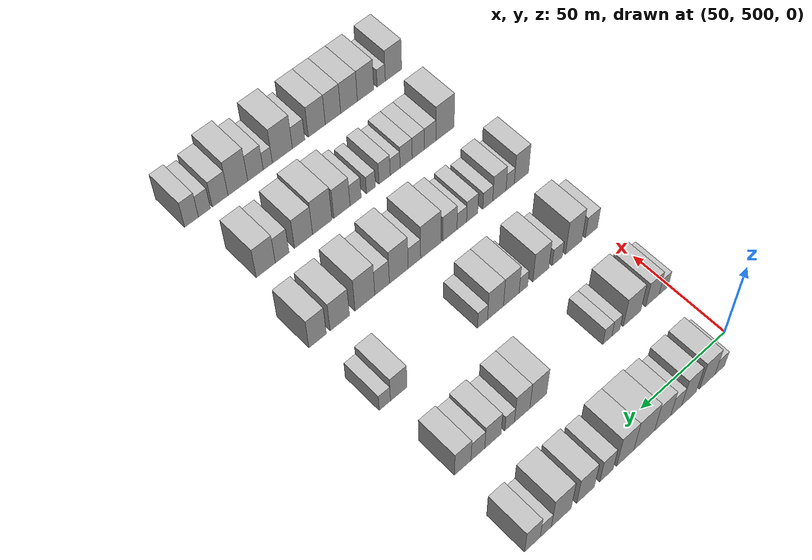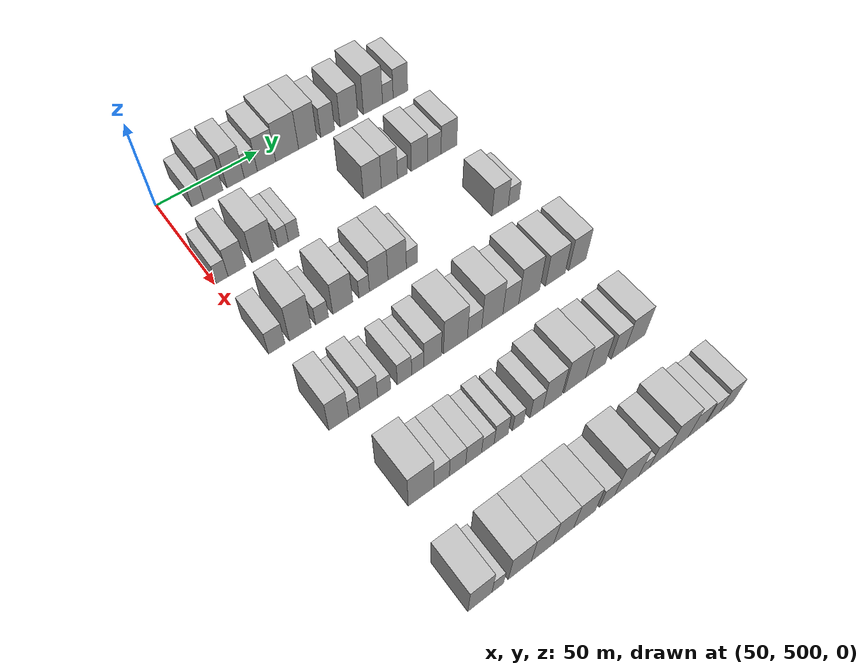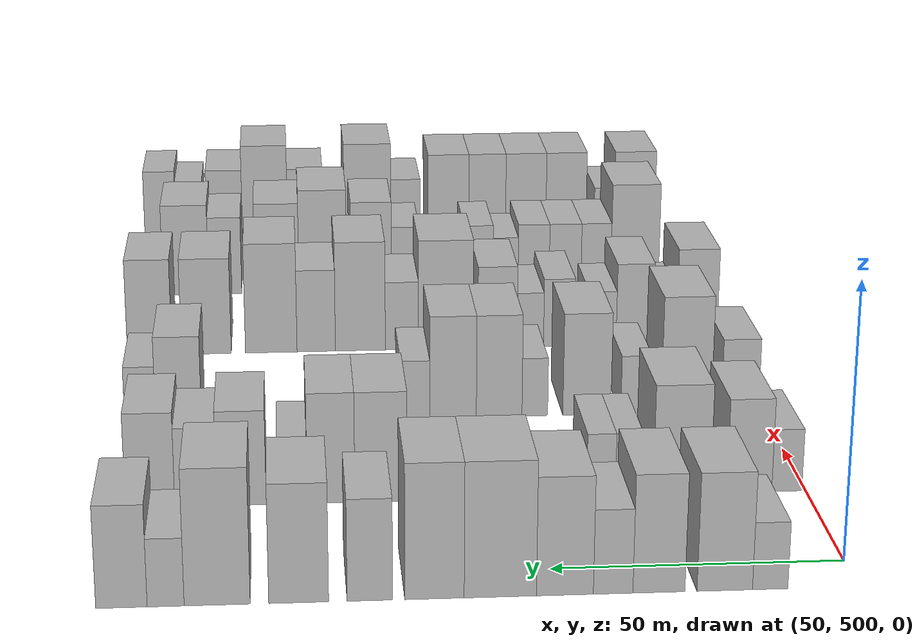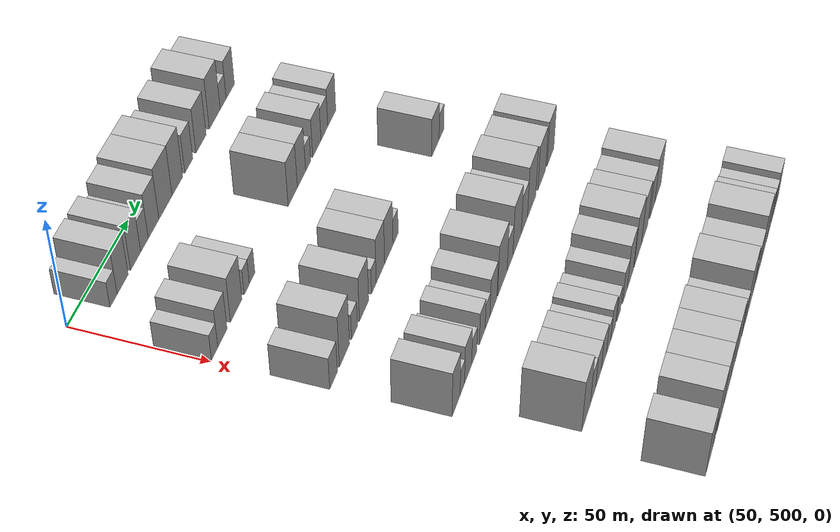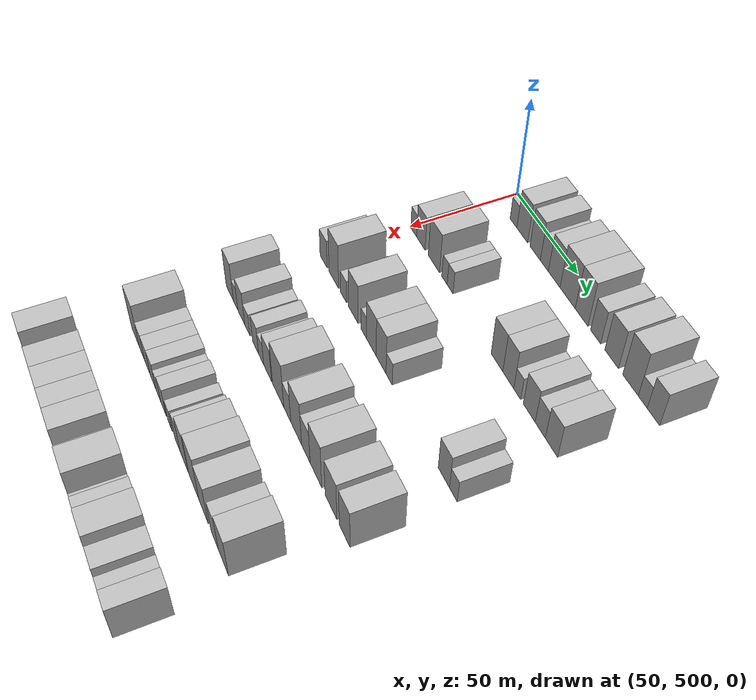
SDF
<sdf version="1.6">
 <world name="default">
  <model name="building_120">
   <static>1</static>
   <pose>50.0000 514.7602 0 0.000000 0.000000 0.000000</pose>
   <link name="link">
    <pose>0 0 6.00 0 0 0</pose>
    <collision name="collision"><geometry><box><size>20.0000 5.8984 12.0000</size></box></geometry></collision>
    <visual name="visual">
     <cast_shadows>0</cast_shadows>
     <geometry><box><size>20.0000 5.8984 12.0000</size></box></geometry>
     <material>
      <script>
       <uri>model://HANNAS_wall/materials/scripts</uri>
       <uri>model://HANNAS_wall/materials/textures</uri>
       <name>vrc/HANNAS_wall</name>
      </script>
     </material>
    </visual>
   </link>
  </model>
  <model name="building_121">
   <static>1</static>
   <pose>50.0000 522.3160 0 0.000000 0.000000 0.000000</pose>
   <link name="link">
    <pose>0 0 10.50 0 0 0</pose>
    <collision name="collision"><geometry><box><size>20.0000 9.2133 21.0000</size></box></geometry></collision>
    <visual name="visual">
     <cast_shadows>0</cast_shadows>
     <geometry><box><size>20.0000 9.2133 21.0000</size></box></geometry>
     <material>
      <script>
       <uri>model://HANNAS_wall/materials/scripts</uri>
       <uri>model://HANNAS_wall/materials/textures</uri>
       <name>vrc/HANNAS_wall</name>
      </script>
     </material>
    </visual>
   </link>
  </model>
  <model name="building_122">
   <static>1</static>
   <pose>50.0000 533.2358 0 0.000000 0.000000 0.000000</pose>
   <link name="link">
    <pose>0 0 10.50 0 0 0</pose>
    <collision name="collision"><geometry><box><size>20.0000 8.6262 21.0000</size></box></geometry></collision>
    <visual name="visual">
     <cast_shadows>0</cast_shadows>
     <geometry><box><size>20.0000 8.6262 21.0000</size></box></geometry>
     <material>
      <script>
       <uri>model://HANNAS_wall/materials/scripts</uri>
       <uri>model://HANNAS_wall/materials/textures</uri>
       <name>vrc/HANNAS_wall</name>
      </script>
     </material>
    </visual>
   </link>
  </model>
  <model name="building_123">
   <static>1</static>
   <pose>50.0000 540.8161 0 0.000000 0.000000 0.000000</pose>
   <link name="link">
    <pose>0 0 7.50 0 0 0</pose>
    <collision name="collision"><geometry><box><size>20.0000 6.5344 15.0000</size></box></geometry></collision>
    <visual name="visual">
     <cast_shadows>0</cast_shadows>
     <geometry><box><size>20.0000 6.5344 15.0000</size></box></geometry>
     <material>
      <script>
       <uri>model://HANNAS_wall/materials/scripts</uri>
       <uri>model://HANNAS_wall/materials/textures</uri>
       <name>vrc/HANNAS_wall</name>
      </script>
     </material>
    </visual>
   </link>
  </model>
  <model name="building_124">
   <static>1</static>
   <pose>50.0000 548.7721 0 0.000000 0.000000 0.000000</pose>
   <link name="link">
    <pose>0 0 10.50 0 0 0</pose>
    <collision name="collision"><geometry><box><size>20.0000 9.3776 21.0000</size></box></geometry></collision>
    <visual name="visual">
     <cast_shadows>0</cast_shadows>
     <geometry><box><size>20.0000 9.3776 21.0000</size></box></geometry>
     <material>
      <script>
       <uri>model://HANNAS_wall/materials/scripts</uri>
       <uri>model://HANNAS_wall/materials/textures</uri>
       <name>vrc/HANNAS_wall</name>
      </script>
     </material>
    </visual>
   </link>
  </model>
  <model name="building_125">
   <static>1</static>
   <pose>50.0000 559.3922 0 0.000000 0.000000 0.000000</pose>
   <link name="link">
    <pose>0 0 12.00 0 0 0</pose>
    <collision name="collision"><geometry><box><size>20.0000 11.8626 24.0000</size></box></geometry></collision>
    <visual name="visual">
     <cast_shadows>0</cast_shadows>
     <geometry><box><size>20.0000 11.8626 24.0000</size></box></geometry>
     <material>
      <script>
       <uri>model://HANNAS_wall/materials/scripts</uri>
       <uri>model://HANNAS_wall/materials/textures</uri>
       <name>vrc/HANNAS_wall</name>
      </script>
     </material>
    </visual>
   </link>
  </model>
  <model name="building_126">
   <static>1</static>
   <pose>50.0000 570.1721 0 0.000000 0.000000 0.000000</pose>
   <link name="link">
    <pose>0 0 12.00 0 0 0</pose>
    <collision name="collision"><geometry><box><size>20.0000 9.6972 24.0000</size></box></geometry></collision>
    <visual name="visual">
     <cast_shadows>0</cast_shadows>
     <geometry><box><size>20.0000 9.6972 24.0000</size></box></geometry>
     <material>
      <script>
       <uri>model://HANNAS_wall/materials/scripts</uri>
       <uri>model://HANNAS_wall/materials/textures</uri>
       <name>vrc/HANNAS_wall</name>
      </script>
     </material>
    </visual>
   </link>
  </model>
  <model name="building_127">
   <static>1</static>
   <pose>50.0000 580.7354 0 0.000000 0.000000 0.000000</pose>
   <link name="link">
    <pose>0 0 9.00 0 0 0</pose>
    <collision name="collision"><geometry><box><size>20.0000 7.4294 18.0000</size></box></geometry></collision>
    <visual name="visual">
     <cast_shadows>0</cast_shadows>
     <geometry><box><size>20.0000 7.4294 18.0000</size></box></geometry>
     <material>
      <script>
       <uri>model://HANNAS_wall/materials/scripts</uri>
       <uri>model://HANNAS_wall/materials/textures</uri>
       <name>vrc/HANNAS_wall</name>
      </script>
     </material>
    </visual>
   </link>
  </model>
  <model name="building_128">
   <static>1</static>
   <pose>50.0000 592.3159 0 0.000000 0.000000 0.000000</pose>
   <link name="link">
    <pose>0 0 10.50 0 0 0</pose>
    <collision name="collision"><geometry><box><size>20.0000 9.7315 21.0000</size></box></geometry></collision>
    <visual name="visual">
     <cast_shadows>0</cast_shadows>
     <geometry><box><size>20.0000 9.7315 21.0000</size></box></geometry>
     <material>
      <script>
       <uri>model://HANNAS_wall/materials/scripts</uri>
       <uri>model://HANNAS_wall/materials/textures</uri>
       <name>vrc/HANNAS_wall</name>
      </script>
     </material>
    </visual>
   </link>
  </model>
  <model name="building_129">
   <static>1</static>
   <pose>50.0000 605.5286 0 0.000000 0.000000 0.000000</pose>
   <link name="link">
    <pose>0 0 12.00 0 0 0</pose>
    <collision name="collision"><geometry><box><size>20.0000 10.6940 24.0000</size></box></geometry></collision>
    <visual name="visual">
     <cast_shadows>0</cast_shadows>
     <geometry><box><size>20.0000 10.6940 24.0000</size></box></geometry>
     <material>
      <script>
       <uri>model://HANNAS_wall/materials/scripts</uri>
       <uri>model://HANNAS_wall/materials/textures</uri>
       <name>vrc/HANNAS_wall</name>
      </script>
     </material>
    </visual>
   </link>
  </model>
  <model name="building_130">
   <static>1</static>
   <pose>50.0000 613.8594 0 0.000000 0.000000 0.000000</pose>
   <link name="link">
    <pose>0 0 6.00 0 0 0</pose>
    <collision name="collision"><geometry><box><size>20.0000 5.9675 12.0000</size></box></geometry></collision>
    <visual name="visual">
     <cast_shadows>0</cast_shadows>
     <geometry><box><size>20.0000 5.9675 12.0000</size></box></geometry>
     <material>
      <script>
       <uri>model://HANNAS_wall/materials/scripts</uri>
       <uri>model://HANNAS_wall/materials/textures</uri>
       <name>vrc/HANNAS_wall</name>
      </script>
     </material>
    </visual>
   </link>
  </model>
  <model name="building_131">
   <static>1</static>
   <pose>50.0000 620.9827 0 0.000000 0.000000 0.000000</pose>
   <link name="link">
    <pose>0 0 9.00 0 0 0</pose>
    <collision name="collision"><geometry><box><size>20.0000 8.2790 18.0000</size></box></geometry></collision>
    <visual name="visual">
     <cast_shadows>0</cast_shadows>
     <geometry><box><size>20.0000 8.2790 18.0000</size></box></geometry>
     <material>
      <script>
       <uri>model://HANNAS_wall/materials/scripts</uri>
       <uri>model://HANNAS_wall/materials/textures</uri>
       <name>vrc/HANNAS_wall</name>
      </script>
     </material>
    </visual>
   </link>
  </model>
  <model name="building_256">
   <static>1</static>
   <pose>90.0000 503.4639 0 0.000000 0.000000 0.000000</pose>
   <link name="link">
    <pose>0 0 6.00 0 0 0</pose>
    <collision name="collision"><geometry><box><size>20.0000 5.5301 12.0000</size></box></geometry></collision>
    <visual name="visual">
     <cast_shadows>0</cast_shadows>
     <geometry><box><size>20.0000 5.5301 12.0000</size></box></geometry>
     <material>
      <script>
       <uri>model://HANNAS_wall/materials/scripts</uri>
       <uri>model://HANNAS_wall/materials/textures</uri>
       <name>vrc/HANNAS_wall</name>
      </script>
     </material>
    </visual>
   </link>
  </model>
  <model name="building_257">
   <static>1</static>
   <pose>90.0000 510.3367 0 0.000000 0.000000 0.000000</pose>
   <link name="link">
    <pose>0 0 9.00 0 0 0</pose>
    <collision name="collision"><geometry><box><size>20.0000 8.2156 18.0000</size></box></geometry></collision>
    <visual name="visual">
     <cast_shadows>0</cast_shadows>
     <geometry><box><size>20.0000 8.2156 18.0000</size></box></geometry>
     <material>
      <script>
       <uri>model://HANNAS_wall/materials/scripts</uri>
       <uri>model://HANNAS_wall/materials/textures</uri>
       <name>vrc/HANNAS_wall</name>
      </script>
     </material>
    </visual>
   </link>
  </model>
  <model name="building_258">
   <static>1</static>
   <pose>90.0000 522.6820 0 0.000000 0.000000 0.000000</pose>
   <link name="link">
    <pose>0 0 10.50 0 0 0</pose>
    <collision name="collision"><geometry><box><size>20.0000 10.4751 21.0000</size></box></geometry></collision>
    <visual name="visual">
     <cast_shadows>0</cast_shadows>
     <geometry><box><size>20.0000 10.4751 21.0000</size></box></geometry>
     <material>
      <script>
       <uri>model://HANNAS_wall/materials/scripts</uri>
       <uri>model://HANNAS_wall/materials/textures</uri>
       <name>vrc/HANNAS_wall</name>
      </script>
     </material>
    </visual>
   </link>
  </model>
  <model name="building_259">
   <static>1</static>
   <pose>90.0000 532.3511 0 0.000000 0.000000 0.000000</pose>
   <link name="link">
    <pose>0 0 6.00 0 0 0</pose>
    <collision name="collision"><geometry><box><size>20.0000 4.8631 12.0000</size></box></geometry></collision>
    <visual name="visual">
     <cast_shadows>0</cast_shadows>
     <geometry><box><size>20.0000 4.8631 12.0000</size></box></geometry>
     <material>
      <script>
       <uri>model://HANNAS_wall/materials/scripts</uri>
       <uri>model://HANNAS_wall/materials/textures</uri>
       <name>vrc/HANNAS_wall</name>
      </script>
     </material>
    </visual>
   </link>
  </model>
  <model name="building_260">
   <static>1</static>
   <pose>90.0000 537.4042 0 0.000000 0.000000 0.000000</pose>
   <link name="link">
    <pose>0 0 6.00 0 0 0</pose>
    <collision name="collision"><geometry><box><size>20.0000 5.2430 12.0000</size></box></geometry></collision>
    <visual name="visual">
     <cast_shadows>0</cast_shadows>
     <geometry><box><size>20.0000 5.2430 12.0000</size></box></geometry>
     <material>
      <script>
       <uri>model://HANNAS_wall/materials/scripts</uri>
       <uri>model://HANNAS_wall/materials/textures</uri>
       <name>vrc/HANNAS_wall</name>
      </script>
     </material>
    </visual>
   </link>
  </model>
  <model name="building_261">
   <static>1</static>
   <pose>90.0000 577.1079 0 0.000000 0.000000 0.000000</pose>
   <link name="link">
    <pose>0 0 10.50 0 0 0</pose>
    <collision name="collision"><geometry><box><size>20.0000 9.3881 21.0000</size></box></geometry></collision>
    <visual name="visual">
     <cast_shadows>0</cast_shadows>
     <geometry><box><size>20.0000 9.3881 21.0000</size></box></geometry>
     <material>
      <script>
       <uri>model://HANNAS_wall/materials/scripts</uri>
       <uri>model://HANNAS_wall/materials/textures</uri>
       <name>vrc/HANNAS_wall</name>
      </script>
     </material>
    </visual>
   </link>
  </model>
  <model name="building_262">
   <static>1</static>
   <pose>90.0000 586.0596 0 0.000000 0.000000 0.000000</pose>
   <link name="link">
    <pose>0 0 10.50 0 0 0</pose>
    <collision name="collision"><geometry><box><size>20.0000 8.5152 21.0000</size></box></geometry></collision>
    <visual name="visual">
     <cast_shadows>0</cast_shadows>
     <geometry><box><size>20.0000 8.5152 21.0000</size></box></geometry>
     <material>
      <script>
       <uri>model://HANNAS_wall/materials/scripts</uri>
       <uri>model://HANNAS_wall/materials/textures</uri>
       <name>vrc/HANNAS_wall</name>
      </script>
     </material>
    </visual>
   </link>
  </model>
  <model name="building_263">
   <static>1</static>
   <pose>90.0000 592.9857 0 0.000000 0.000000 0.000000</pose>
   <link name="link">
    <pose>0 0 6.00 0 0 0</pose>
    <collision name="collision"><geometry><box><size>20.0000 5.3370 12.0000</size></box></geometry></collision>
    <visual name="visual">
     <cast_shadows>0</cast_shadows>
     <geometry><box><size>20.0000 5.3370 12.0000</size></box></geometry>
     <material>
      <script>
       <uri>model://HANNAS_wall/materials/scripts</uri>
       <uri>model://HANNAS_wall/materials/textures</uri>
       <name>vrc/HANNAS_wall</name>
      </script>
     </material>
    </visual>
   </link>
  </model>
  <model name="building_264">
   <static>1</static>
   <pose>90.0000 602.0982 0 0.000000 0.000000 0.000000</pose>
   <link name="link">
    <pose>0 0 9.00 0 0 0</pose>
    <collision name="collision"><geometry><box><size>20.0000 8.8879 18.0000</size></box></geometry></collision>
    <visual name="visual">
     <cast_shadows>0</cast_shadows>
     <geometry><box><size>20.0000 8.8879 18.0000</size></box></geometry>
     <material>
      <script>
       <uri>model://HANNAS_wall/materials/scripts</uri>
       <uri>model://HANNAS_wall/materials/textures</uri>
       <name>vrc/HANNAS_wall</name>
      </script>
     </material>
    </visual>
   </link>
  </model>
  <model name="building_265">
   <static>1</static>
   <pose>90.0000 610.2384 0 0.000000 0.000000 0.000000</pose>
   <link name="link">
    <pose>0 0 7.50 0 0 0</pose>
    <collision name="collision"><geometry><box><size>20.0000 7.3925 15.0000</size></box></geometry></collision>
    <visual name="visual">
     <cast_shadows>0</cast_shadows>
     <geometry><box><size>20.0000 7.3925 15.0000</size></box></geometry>
     <material>
      <script>
       <uri>model://HANNAS_wall/materials/scripts</uri>
       <uri>model://HANNAS_wall/materials/textures</uri>
       <name>vrc/HANNAS_wall</name>
      </script>
     </material>
    </visual>
   </link>
  </model>
  <model name="building_266">
   <static>1</static>
   <pose>90.0000 618.3263 0 0.000000 0.000000 0.000000</pose>
   <link name="link">
    <pose>0 0 9.00 0 0 0</pose>
    <collision name="collision"><geometry><box><size>20.0000 8.7832 18.0000</size></box></geometry></collision>
    <visual name="visual">
     <cast_shadows>0</cast_shadows>
     <geometry><box><size>20.0000 8.7832 18.0000</size></box></geometry>
     <material>
      <script>
       <uri>model://HANNAS_wall/materials/scripts</uri>
       <uri>model://HANNAS_wall/materials/textures</uri>
       <name>vrc/HANNAS_wall</name>
      </script>
     </material>
    </visual>
   </link>
  </model>
  <model name="building_387">
   <static>1</static>
   <pose>130.0000 504.3162 0 0.000000 0.000000 0.000000</pose>
   <link name="link">
    <pose>0 0 7.50 0 0 0</pose>
    <collision name="collision"><geometry><box><size>20.0000 7.4465 15.0000</size></box></geometry></collision>
    <visual name="visual">
     <cast_shadows>0</cast_shadows>
     <geometry><box><size>20.0000 7.4465 15.0000</size></box></geometry>
     <material>
      <script>
       <uri>model://HANNAS_wall/materials/scripts</uri>
       <uri>model://HANNAS_wall/materials/textures</uri>
       <name>vrc/HANNAS_wall</name>
      </script>
     </material>
    </visual>
   </link>
  </model>
  <model name="building_388">
   <static>1</static>
   <pose>130.0000 515.0368 0 0.000000 0.000000 0.000000</pose>
   <link name="link">
    <pose>0 0 12.00 0 0 0</pose>
    <collision name="collision"><geometry><box><size>20.0000 9.9949 24.0000</size></box></geometry></collision>
    <visual name="visual">
     <cast_shadows>0</cast_shadows>
     <geometry><box><size>20.0000 9.9949 24.0000</size></box></geometry>
     <material>
      <script>
       <uri>model://HANNAS_wall/materials/scripts</uri>
       <uri>model://HANNAS_wall/materials/textures</uri>
       <name>vrc/HANNAS_wall</name>
      </script>
     </material>
    </visual>
   </link>
  </model>
  <model name="building_389">
   <static>1</static>
   <pose>130.0000 525.0308 0 0.000000 0.000000 0.000000</pose>
   <link name="link">
    <pose>0 0 6.00 0 0 0</pose>
    <collision name="collision"><geometry><box><size>20.0000 5.9930 12.0000</size></box></geometry></collision>
    <visual name="visual">
     <cast_shadows>0</cast_shadows>
     <geometry><box><size>20.0000 5.9930 12.0000</size></box></geometry>
     <material>
      <script>
       <uri>model://HANNAS_wall/materials/scripts</uri>
       <uri>model://HANNAS_wall/materials/textures</uri>
       <name>vrc/HANNAS_wall</name>
      </script>
     </material>
    </visual>
   </link>
  </model>
  <model name="building_390">
   <static>1</static>
   <pose>130.0000 534.7766 0 0.000000 0.000000 0.000000</pose>
   <link name="link">
    <pose>0 0 10.50 0 0 0</pose>
    <collision name="collision"><geometry><box><size>20.0000 9.4985 21.0000</size></box></geometry></collision>
    <visual name="visual">
     <cast_shadows>0</cast_shadows>
     <geometry><box><size>20.0000 9.4985 21.0000</size></box></geometry>
     <material>
      <script>
       <uri>model://HANNAS_wall/materials/scripts</uri>
       <uri>model://HANNAS_wall/materials/textures</uri>
       <name>vrc/HANNAS_wall</name>
      </script>
     </material>
    </visual>
   </link>
  </model>
  <model name="building_391">
   <static>1</static>
   <pose>130.0000 545.0600 0 0.000000 0.000000 0.000000</pose>
   <link name="link">
    <pose>0 0 6.00 0 0 0</pose>
    <collision name="collision"><geometry><box><size>20.0000 5.0683 12.0000</size></box></geometry></collision>
    <visual name="visual">
     <cast_shadows>0</cast_shadows>
     <geometry><box><size>20.0000 5.0683 12.0000</size></box></geometry>
     <material>
      <script>
       <uri>model://HANNAS_wall/materials/scripts</uri>
       <uri>model://HANNAS_wall/materials/textures</uri>
       <name>vrc/HANNAS_wall</name>
      </script>
     </material>
    </visual>
   </link>
  </model>
  <model name="building_392">
   <static>1</static>
   <pose>130.0000 552.0949 0 0.000000 0.000000 0.000000</pose>
   <link name="link">
    <pose>0 0 10.50 0 0 0</pose>
    <collision name="collision"><geometry><box><size>20.0000 9.0016 21.0000</size></box></geometry></collision>
    <visual name="visual">
     <cast_shadows>0</cast_shadows>
     <geometry><box><size>20.0000 9.0016 21.0000</size></box></geometry>
     <material>
      <script>
       <uri>model://HANNAS_wall/materials/scripts</uri>
       <uri>model://HANNAS_wall/materials/textures</uri>
       <name>vrc/HANNAS_wall</name>
      </script>
     </material>
    </visual>
   </link>
  </model>
  <model name="building_393">
   <static>1</static>
   <pose>130.0000 561.1725 0 0.000000 0.000000 0.000000</pose>
   <link name="link">
    <pose>0 0 10.50 0 0 0</pose>
    <collision name="collision"><geometry><box><size>20.0000 9.1536 21.0000</size></box></geometry></collision>
    <visual name="visual">
     <cast_shadows>0</cast_shadows>
     <geometry><box><size>20.0000 9.1536 21.0000</size></box></geometry>
     <material>
      <script>
       <uri>model://HANNAS_wall/materials/scripts</uri>
       <uri>model://HANNAS_wall/materials/textures</uri>
       <name>vrc/HANNAS_wall</name>
      </script>
     </material>
    </visual>
   </link>
  </model>
  <model name="building_394">
   <static>1</static>
   <pose>130.0000 568.5915 0 0.000000 0.000000 0.000000</pose>
   <link name="link">
    <pose>0 0 6.00 0 0 0</pose>
    <collision name="collision"><geometry><box><size>20.0000 5.6844 12.0000</size></box></geometry></collision>
    <visual name="visual">
     <cast_shadows>0</cast_shadows>
     <geometry><box><size>20.0000 5.6844 12.0000</size></box></geometry>
     <material>
      <script>
       <uri>model://HANNAS_wall/materials/scripts</uri>
       <uri>model://HANNAS_wall/materials/textures</uri>
       <name>vrc/HANNAS_wall</name>
      </script>
     </material>
    </visual>
   </link>
  </model>
  <model name="building_395">
   <static>1</static>
   <pose>130.0000 614.7691 0 0.000000 0.000000 0.000000</pose>
   <link name="link">
    <pose>0 0 9.00 0 0 0</pose>
    <collision name="collision"><geometry><box><size>20.0000 8.8903 18.0000</size></box></geometry></collision>
    <visual name="visual">
     <cast_shadows>0</cast_shadows>
     <geometry><box><size>20.0000 8.8903 18.0000</size></box></geometry>
     <material>
      <script>
       <uri>model://HANNAS_wall/materials/scripts</uri>
       <uri>model://HANNAS_wall/materials/textures</uri>
       <name>vrc/HANNAS_wall</name>
      </script>
     </material>
    </visual>
   </link>
  </model>
  <model name="building_396">
   <static>1</static>
   <pose>130.0000 622.2013 0 0.000000 0.000000 0.000000</pose>
   <link name="link">
    <pose>0 0 6.00 0 0 0</pose>
    <collision name="collision"><geometry><box><size>20.0000 5.9740 12.0000</size></box></geometry></collision>
    <visual name="visual">
     <cast_shadows>0</cast_shadows>
     <geometry><box><size>20.0000 5.9740 12.0000</size></box></geometry>
     <material>
      <script>
       <uri>model://HANNAS_wall/materials/scripts</uri>
       <uri>model://HANNAS_wall/materials/textures</uri>
       <name>vrc/HANNAS_wall</name>
      </script>
     </material>
    </visual>
   </link>
  </model>
  <model name="building_527">
   <static>1</static>
   <pose>170.0000 505.9463 0 0.000000 0.000000 0.000000</pose>
   <link name="link">
    <pose>0 0 10.50 0 0 0</pose>
    <collision name="collision"><geometry><box><size>20.0000 8.7324 21.0000</size></box></geometry></collision>
    <visual name="visual">
     <cast_shadows>0</cast_shadows>
     <geometry><box><size>20.0000 8.7324 21.0000</size></box></geometry>
     <material>
      <script>
       <uri>model://HANNAS_wall/materials/scripts</uri>
       <uri>model://HANNAS_wall/materials/textures</uri>
       <name>vrc/HANNAS_wall</name>
      </script>
     </material>
    </visual>
   </link>
  </model>
  <model name="building_528">
   <static>1</static>
   <pose>170.0000 512.8039 0 0.000000 0.000000 0.000000</pose>
   <link name="link">
    <pose>0 0 6.00 0 0 0</pose>
    <collision name="collision"><geometry><box><size>20.0000 4.9829 12.0000</size></box></geometry></collision>
    <visual name="visual">
     <cast_shadows>0</cast_shadows>
     <geometry><box><size>20.0000 4.9829 12.0000</size></box></geometry>
     <material>
      <script>
       <uri>model://HANNAS_wall/materials/scripts</uri>
       <uri>model://HANNAS_wall/materials/textures</uri>
       <name>vrc/HANNAS_wall</name>
      </script>
     </material>
    </visual>
   </link>
  </model>
  <model name="building_529">
   <static>1</static>
   <pose>170.0000 519.2996 0 0.000000 0.000000 0.000000</pose>
   <link name="link">
    <pose>0 0 9.00 0 0 0</pose>
    <collision name="collision"><geometry><box><size>20.0000 8.0085 18.0000</size></box></geometry></collision>
    <visual name="visual">
     <cast_shadows>0</cast_shadows>
     <geometry><box><size>20.0000 8.0085 18.0000</size></box></geometry>
     <material>
      <script>
       <uri>model://HANNAS_wall/materials/scripts</uri>
       <uri>model://HANNAS_wall/materials/textures</uri>
       <name>vrc/HANNAS_wall</name>
      </script>
     </material>
    </visual>
   </link>
  </model>
  <model name="building_530">
   <static>1</static>
   <pose>170.0000 526.2612 0 0.000000 0.000000 0.000000</pose>
   <link name="link">
    <pose>0 0 6.00 0 0 0</pose>
    <collision name="collision"><geometry><box><size>20.0000 5.9145 12.0000</size></box></geometry></collision>
    <visual name="visual">
     <cast_shadows>0</cast_shadows>
     <geometry><box><size>20.0000 5.9145 12.0000</size></box></geometry>
     <material>
      <script>
       <uri>model://HANNAS_wall/materials/scripts</uri>
       <uri>model://HANNAS_wall/materials/textures</uri>
       <name>vrc/HANNAS_wall</name>
      </script>
     </material>
    </visual>
   </link>
  </model>
  <model name="building_531">
   <static>1</static>
   <pose>170.0000 535.5401 0 0.000000 0.000000 0.000000</pose>
   <link name="link">
    <pose>0 0 7.50 0 0 0</pose>
    <collision name="collision"><geometry><box><size>20.0000 6.6434 15.0000</size></box></geometry></collision>
    <visual name="visual">
     <cast_shadows>0</cast_shadows>
     <geometry><box><size>20.0000 6.6434 15.0000</size></box></geometry>
     <material>
      <script>
       <uri>model://HANNAS_wall/materials/scripts</uri>
       <uri>model://HANNAS_wall/materials/textures</uri>
       <name>vrc/HANNAS_wall</name>
      </script>
     </material>
    </visual>
   </link>
  </model>
  <model name="building_532">
   <static>1</static>
   <pose>170.0000 541.6931 0 0.000000 0.000000 0.000000</pose>
   <link name="link">
    <pose>0 0 6.00 0 0 0</pose>
    <collision name="collision"><geometry><box><size>20.0000 5.6625 12.0000</size></box></geometry></collision>
    <visual name="visual">
     <cast_shadows>0</cast_shadows>
     <geometry><box><size>20.0000 5.6625 12.0000</size></box></geometry>
     <material>
      <script>
       <uri>model://HANNAS_wall/materials/scripts</uri>
       <uri>model://HANNAS_wall/materials/textures</uri>
       <name>vrc/HANNAS_wall</name>
      </script>
     </material>
    </visual>
   </link>
  </model>
  <model name="building_533">
   <static>1</static>
   <pose>170.0000 548.7113 0 0.000000 0.000000 0.000000</pose>
   <link name="link">
    <pose>0 0 9.00 0 0 0</pose>
    <collision name="collision"><geometry><box><size>20.0000 8.3740 18.0000</size></box></geometry></collision>
    <visual name="visual">
     <cast_shadows>0</cast_shadows>
     <geometry><box><size>20.0000 8.3740 18.0000</size></box></geometry>
     <material>
      <script>
       <uri>model://HANNAS_wall/materials/scripts</uri>
       <uri>model://HANNAS_wall/materials/textures</uri>
       <name>vrc/HANNAS_wall</name>
      </script>
     </material>
    </visual>
   </link>
  </model>
  <model name="building_534">
   <static>1</static>
   <pose>170.0000 559.7133 0 0.000000 0.000000 0.000000</pose>
   <link name="link">
    <pose>0 0 12.00 0 0 0</pose>
    <collision name="collision"><geometry><box><size>20.0000 11.6300 24.0000</size></box></geometry></collision>
    <visual name="visual">
     <cast_shadows>0</cast_shadows>
     <geometry><box><size>20.0000 11.6300 24.0000</size></box></geometry>
     <material>
      <script>
       <uri>model://HANNAS_wall/materials/scripts</uri>
       <uri>model://HANNAS_wall/materials/textures</uri>
       <name>vrc/HANNAS_wall</name>
      </script>
     </material>
    </visual>
   </link>
  </model>
  <model name="building_535">
   <static>1</static>
   <pose>170.0000 569.0607 0 0.000000 0.000000 0.000000</pose>
   <link name="link">
    <pose>0 0 7.50 0 0 0</pose>
    <collision name="collision"><geometry><box><size>20.0000 7.0647 15.0000</size></box></geometry></collision>
    <visual name="visual">
     <cast_shadows>0</cast_shadows>
     <geometry><box><size>20.0000 7.0647 15.0000</size></box></geometry>
     <material>
      <script>
       <uri>model://HANNAS_wall/materials/scripts</uri>
       <uri>model://HANNAS_wall/materials/textures</uri>
       <name>vrc/HANNAS_wall</name>
      </script>
     </material>
    </visual>
   </link>
  </model>
  <model name="building_536">
   <static>1</static>
   <pose>170.0000 577.8874 0 0.000000 0.000000 0.000000</pose>
   <link name="link">
    <pose>0 0 12.00 0 0 0</pose>
    <collision name="collision"><geometry><box><size>20.0000 10.5888 24.0000</size></box></geometry></collision>
    <visual name="visual">
     <cast_shadows>0</cast_shadows>
     <geometry><box><size>20.0000 10.5888 24.0000</size></box></geometry>
     <material>
      <script>
       <uri>model://HANNAS_wall/materials/scripts</uri>
       <uri>model://HANNAS_wall/materials/textures</uri>
       <name>vrc/HANNAS_wall</name>
      </script>
     </material>
    </visual>
   </link>
  </model>
  <model name="building_537">
   <static>1</static>
   <pose>170.0000 587.2462 0 0.000000 0.000000 0.000000</pose>
   <link name="link">
    <pose>0 0 9.00 0 0 0</pose>
    <collision name="collision"><geometry><box><size>20.0000 8.1287 18.0000</size></box></geometry></collision>
    <visual name="visual">
     <cast_shadows>0</cast_shadows>
     <geometry><box><size>20.0000 8.1287 18.0000</size></box></geometry>
     <material>
      <script>
       <uri>model://HANNAS_wall/materials/scripts</uri>
       <uri>model://HANNAS_wall/materials/textures</uri>
       <name>vrc/HANNAS_wall</name>
      </script>
     </material>
    </visual>
   </link>
  </model>
  <model name="building_538">
   <static>1</static>
   <pose>170.0000 596.7522 0 0.000000 0.000000 0.000000</pose>
   <link name="link">
    <pose>0 0 12.00 0 0 0</pose>
    <collision name="collision"><geometry><box><size>20.0000 10.8834 24.0000</size></box></geometry></collision>
    <visual name="visual">
     <cast_shadows>0</cast_shadows>
     <geometry><box><size>20.0000 10.8834 24.0000</size></box></geometry>
     <material>
      <script>
       <uri>model://HANNAS_wall/materials/scripts</uri>
       <uri>model://HANNAS_wall/materials/textures</uri>
       <name>vrc/HANNAS_wall</name>
      </script>
     </material>
    </visual>
   </link>
  </model>
  <model name="building_539">
   <static>1</static>
   <pose>170.0000 610.4367 0 0.000000 0.000000 0.000000</pose>
   <link name="link">
    <pose>0 0 10.50 0 0 0</pose>
    <collision name="collision"><geometry><box><size>20.0000 10.4855 21.0000</size></box></geometry></collision>
    <visual name="visual">
     <cast_shadows>0</cast_shadows>
     <geometry><box><size>20.0000 10.4855 21.0000</size></box></geometry>
     <material>
      <script>
       <uri>model://HANNAS_wall/materials/scripts</uri>
       <uri>model://HANNAS_wall/materials/textures</uri>
       <name>vrc/HANNAS_wall</name>
      </script>
     </material>
    </visual>
   </link>
  </model>
  <model name="building_540">
   <static>1</static>
   <pose>170.0000 622.3458 0 0.000000 0.000000 0.000000</pose>
   <link name="link">
    <pose>0 0 10.50 0 0 0</pose>
    <collision name="collision"><geometry><box><size>20.0000 9.3327 21.0000</size></box></geometry></collision>
    <visual name="visual">
     <cast_shadows>0</cast_shadows>
     <geometry><box><size>20.0000 9.3327 21.0000</size></box></geometry>
     <material>
      <script>
       <uri>model://HANNAS_wall/materials/scripts</uri>
       <uri>model://HANNAS_wall/materials/textures</uri>
       <name>vrc/HANNAS_wall</name>
      </script>
     </material>
    </visual>
   </link>
  </model>
  <model name="building_666">
   <static>1</static>
   <pose>210.0000 513.3635 0 0.000000 0.000000 0.000000</pose>
   <link name="link">
    <pose>0 0 12.00 0 0 0</pose>
    <collision name="collision"><geometry><box><size>20.0000 11.0531 24.0000</size></box></geometry></collision>
    <visual name="visual">
     <cast_shadows>0</cast_shadows>
     <geometry><box><size>20.0000 11.0531 24.0000</size></box></geometry>
     <material>
      <script>
       <uri>model://HANNAS_wall/materials/scripts</uri>
       <uri>model://HANNAS_wall/materials/textures</uri>
       <name>vrc/HANNAS_wall</name>
      </script>
     </material>
    </visual>
   </link>
  </model>
  <model name="building_667">
   <static>1</static>
   <pose>210.0000 522.3277 0 0.000000 0.000000 0.000000</pose>
   <link name="link">
    <pose>0 0 7.50 0 0 0</pose>
    <collision name="collision"><geometry><box><size>20.0000 6.8753 15.0000</size></box></geometry></collision>
    <visual name="visual">
     <cast_shadows>0</cast_shadows>
     <geometry><box><size>20.0000 6.8753 15.0000</size></box></geometry>
     <material>
      <script>
       <uri>model://HANNAS_wall/materials/scripts</uri>
       <uri>model://HANNAS_wall/materials/textures</uri>
       <name>vrc/HANNAS_wall</name>
      </script>
     </material>
    </visual>
   </link>
  </model>
  <model name="building_668">
   <static>1</static>
   <pose>210.0000 529.4348 0 0.000000 0.000000 0.000000</pose>
   <link name="link">
    <pose>0 0 7.50 0 0 0</pose>
    <collision name="collision"><geometry><box><size>20.0000 7.3388 15.0000</size></box></geometry></collision>
    <visual name="visual">
     <cast_shadows>0</cast_shadows>
     <geometry><box><size>20.0000 7.3388 15.0000</size></box></geometry>
     <material>
      <script>
       <uri>model://HANNAS_wall/materials/scripts</uri>
       <uri>model://HANNAS_wall/materials/textures</uri>
       <name>vrc/HANNAS_wall</name>
      </script>
     </material>
    </visual>
   </link>
  </model>
  <model name="building_669">
   <static>1</static>
   <pose>210.0000 536.6911 0 0.000000 0.000000 0.000000</pose>
   <link name="link">
    <pose>0 0 7.50 0 0 0</pose>
    <collision name="collision"><geometry><box><size>20.0000 7.1737 15.0000</size></box></geometry></collision>
    <visual name="visual">
     <cast_shadows>0</cast_shadows>
     <geometry><box><size>20.0000 7.1737 15.0000</size></box></geometry>
     <material>
      <script>
       <uri>model://HANNAS_wall/materials/scripts</uri>
       <uri>model://HANNAS_wall/materials/textures</uri>
       <name>vrc/HANNAS_wall</name>
      </script>
     </material>
    </visual>
   </link>
  </model>
  <model name="building_670">
   <static>1</static>
   <pose>210.0000 543.1695 0 0.000000 0.000000 0.000000</pose>
   <link name="link">
    <pose>0 0 6.00 0 0 0</pose>
    <collision name="collision"><geometry><box><size>20.0000 5.7831 12.0000</size></box></geometry></collision>
    <visual name="visual">
     <cast_shadows>0</cast_shadows>
     <geometry><box><size>20.0000 5.7831 12.0000</size></box></geometry>
     <material>
      <script>
       <uri>model://HANNAS_wall/materials/scripts</uri>
       <uri>model://HANNAS_wall/materials/textures</uri>
       <name>vrc/HANNAS_wall</name>
      </script>
     </material>
    </visual>
   </link>
  </model>
  <model name="building_671">
   <static>1</static>
   <pose>210.0000 549.3547 0 0.000000 0.000000 0.000000</pose>
   <link name="link">
    <pose>0 0 7.50 0 0 0</pose>
    <collision name="collision"><geometry><box><size>20.0000 6.5873 15.0000</size></box></geometry></collision>
    <visual name="visual">
     <cast_shadows>0</cast_shadows>
     <geometry><box><size>20.0000 6.5873 15.0000</size></box></geometry>
     <material>
      <script>
       <uri>model://HANNAS_wall/materials/scripts</uri>
       <uri>model://HANNAS_wall/materials/textures</uri>
       <name>vrc/HANNAS_wall</name>
      </script>
     </material>
    </visual>
   </link>
  </model>
  <model name="building_672">
   <static>1</static>
   <pose>210.0000 557.2847 0 0.000000 0.000000 0.000000</pose>
   <link name="link">
    <pose>0 0 6.00 0 0 0</pose>
    <collision name="collision"><geometry><box><size>20.0000 5.2727 12.0000</size></box></geometry></collision>
    <visual name="visual">
     <cast_shadows>0</cast_shadows>
     <geometry><box><size>20.0000 5.2727 12.0000</size></box></geometry>
     <material>
      <script>
       <uri>model://HANNAS_wall/materials/scripts</uri>
       <uri>model://HANNAS_wall/materials/textures</uri>
       <name>vrc/HANNAS_wall</name>
      </script>
     </material>
    </visual>
   </link>
  </model>
  <model name="building_673">
   <static>1</static>
   <pose>210.0000 566.1105 0 0.000000 0.000000 0.000000</pose>
   <link name="link">
    <pose>0 0 7.50 0 0 0</pose>
    <collision name="collision"><geometry><box><size>20.0000 6.3787 15.0000</size></box></geometry></collision>
    <visual name="visual">
     <cast_shadows>0</cast_shadows>
     <geometry><box><size>20.0000 6.3787 15.0000</size></box></geometry>
     <material>
      <script>
       <uri>model://HANNAS_wall/materials/scripts</uri>
       <uri>model://HANNAS_wall/materials/textures</uri>
       <name>vrc/HANNAS_wall</name>
      </script>
     </material>
    </visual>
   </link>
  </model>
  <model name="building_674">
   <static>1</static>
   <pose>210.0000 573.9177 0 0.000000 0.000000 0.000000</pose>
   <link name="link">
    <pose>0 0 10.50 0 0 0</pose>
    <collision name="collision"><geometry><box><size>20.0000 9.2357 21.0000</size></box></geometry></collision>
    <visual name="visual">
     <cast_shadows>0</cast_shadows>
     <geometry><box><size>20.0000 9.2357 21.0000</size></box></geometry>
     <material>
      <script>
       <uri>model://HANNAS_wall/materials/scripts</uri>
       <uri>model://HANNAS_wall/materials/textures</uri>
       <name>vrc/HANNAS_wall</name>
      </script>
     </material>
    </visual>
   </link>
  </model>
  <model name="building_675">
   <static>1</static>
   <pose>210.0000 584.9789 0 0.000000 0.000000 0.000000</pose>
   <link name="link">
    <pose>0 0 12.00 0 0 0</pose>
    <collision name="collision"><geometry><box><size>20.0000 10.8867 24.0000</size></box></geometry></collision>
    <visual name="visual">
     <cast_shadows>0</cast_shadows>
     <geometry><box><size>20.0000 10.8867 24.0000</size></box></geometry>
     <material>
      <script>
       <uri>model://HANNAS_wall/materials/scripts</uri>
       <uri>model://HANNAS_wall/materials/textures</uri>
       <name>vrc/HANNAS_wall</name>
      </script>
     </material>
    </visual>
   </link>
  </model>
  <model name="building_676">
   <static>1</static>
   <pose>210.0000 595.4330 0 0.000000 0.000000 0.000000</pose>
   <link name="link">
    <pose>0 0 10.50 0 0 0</pose>
    <collision name="collision"><geometry><box><size>20.0000 10.0216 21.0000</size></box></geometry></collision>
    <visual name="visual">
     <cast_shadows>0</cast_shadows>
     <geometry><box><size>20.0000 10.0216 21.0000</size></box></geometry>
     <material>
      <script>
       <uri>model://HANNAS_wall/materials/scripts</uri>
       <uri>model://HANNAS_wall/materials/textures</uri>
       <name>vrc/HANNAS_wall</name>
      </script>
     </material>
    </visual>
   </link>
  </model>
  <model name="building_677">
   <static>1</static>
   <pose>210.0000 607.1875 0 0.000000 0.000000 0.000000</pose>
   <link name="link">
    <pose>0 0 9.00 0 0 0</pose>
    <collision name="collision"><geometry><box><size>20.0000 7.4873 18.0000</size></box></geometry></collision>
    <visual name="visual">
     <cast_shadows>0</cast_shadows>
     <geometry><box><size>20.0000 7.4873 18.0000</size></box></geometry>
     <material>
      <script>
       <uri>model://HANNAS_wall/materials/scripts</uri>
       <uri>model://HANNAS_wall/materials/textures</uri>
       <name>vrc/HANNAS_wall</name>
      </script>
     </material>
    </visual>
   </link>
  </model>
  <model name="building_678">
   <static>1</static>
   <pose>210.0000 616.0971 0 0.000000 0.000000 0.000000</pose>
   <link name="link">
    <pose>0 0 10.50 0 0 0</pose>
    <collision name="collision"><geometry><box><size>20.0000 10.3320 21.0000</size></box></geometry></collision>
    <visual name="visual">
     <cast_shadows>0</cast_shadows>
     <geometry><box><size>20.0000 10.3320 21.0000</size></box></geometry>
     <material>
      <script>
       <uri>model://HANNAS_wall/materials/scripts</uri>
       <uri>model://HANNAS_wall/materials/textures</uri>
       <name>vrc/HANNAS_wall</name>
      </script>
     </material>
    </visual>
   </link>
  </model>
  <model name="building_798">
   <static>1</static>
   <pose>250.0000 507.4652 0 0.000000 0.000000 0.000000</pose>
   <link name="link">
    <pose>0 0 10.50 0 0 0</pose>
    <collision name="collision"><geometry><box><size>20.0000 10.0847 21.0000</size></box></geometry></collision>
    <visual name="visual">
     <cast_shadows>0</cast_shadows>
     <geometry><box><size>20.0000 10.0847 21.0000</size></box></geometry>
     <material>
      <script>
       <uri>model://HANNAS_wall/materials/scripts</uri>
       <uri>model://HANNAS_wall/materials/textures</uri>
       <name>vrc/HANNAS_wall</name>
      </script>
     </material>
    </visual>
   </link>
  </model>
  <model name="building_799">
   <static>1</static>
   <pose>250.0000 514.9812 0 0.000000 0.000000 0.000000</pose>
   <link name="link">
    <pose>0 0 6.00 0 0 0</pose>
    <collision name="collision"><geometry><box><size>20.0000 4.9475 12.0000</size></box></geometry></collision>
    <visual name="visual">
     <cast_shadows>0</cast_shadows>
     <geometry><box><size>20.0000 4.9475 12.0000</size></box></geometry>
     <material>
      <script>
       <uri>model://HANNAS_wall/materials/scripts</uri>
       <uri>model://HANNAS_wall/materials/textures</uri>
       <name>vrc/HANNAS_wall</name>
      </script>
     </material>
    </visual>
   </link>
  </model>
  <model name="building_800">
   <static>1</static>
   <pose>250.0000 524.4145 0 0.000000 0.000000 0.000000</pose>
   <link name="link">
    <pose>0 0 10.50 0 0 0</pose>
    <collision name="collision"><geometry><box><size>20.0000 9.9192 21.0000</size></box></geometry></collision>
    <visual name="visual">
     <cast_shadows>0</cast_shadows>
     <geometry><box><size>20.0000 9.9192 21.0000</size></box></geometry>
     <material>
      <script>
       <uri>model://HANNAS_wall/materials/scripts</uri>
       <uri>model://HANNAS_wall/materials/textures</uri>
       <name>vrc/HANNAS_wall</name>
      </script>
     </material>
    </visual>
   </link>
  </model>
  <model name="building_801">
   <static>1</static>
   <pose>250.0000 534.3460 0 0.000000 0.000000 0.000000</pose>
   <link name="link">
    <pose>0 0 10.50 0 0 0</pose>
    <collision name="collision"><geometry><box><size>20.0000 9.9437 21.0000</size></box></geometry></collision>
    <visual name="visual">
     <cast_shadows>0</cast_shadows>
     <geometry><box><size>20.0000 9.9437 21.0000</size></box></geometry>
     <material>
      <script>
       <uri>model://HANNAS_wall/materials/scripts</uri>
       <uri>model://HANNAS_wall/materials/textures</uri>
       <name>vrc/HANNAS_wall</name>
      </script>
     </material>
    </visual>
   </link>
  </model>
  <model name="building_802">
   <static>1</static>
   <pose>250.0000 543.8584 0 0.000000 0.000000 0.000000</pose>
   <link name="link">
    <pose>0 0 10.50 0 0 0</pose>
    <collision name="collision"><geometry><box><size>20.0000 9.0812 21.0000</size></box></geometry></collision>
    <visual name="visual">
     <cast_shadows>0</cast_shadows>
     <geometry><box><size>20.0000 9.0812 21.0000</size></box></geometry>
     <material>
      <script>
       <uri>model://HANNAS_wall/materials/scripts</uri>
       <uri>model://HANNAS_wall/materials/textures</uri>
       <name>vrc/HANNAS_wall</name>
      </script>
     </material>
    </visual>
   </link>
  </model>
  <model name="building_803">
   <static>1</static>
   <pose>250.0000 553.3690 0 0.000000 0.000000 0.000000</pose>
   <link name="link">
    <pose>0 0 10.50 0 0 0</pose>
    <collision name="collision"><geometry><box><size>20.0000 9.9400 21.0000</size></box></geometry></collision>
    <visual name="visual">
     <cast_shadows>0</cast_shadows>
     <geometry><box><size>20.0000 9.9400 21.0000</size></box></geometry>
     <material>
      <script>
       <uri>model://HANNAS_wall/materials/scripts</uri>
       <uri>model://HANNAS_wall/materials/textures</uri>
       <name>vrc/HANNAS_wall</name>
      </script>
     </material>
    </visual>
   </link>
  </model>
  <model name="building_804">
   <static>1</static>
   <pose>250.0000 563.9258 0 0.000000 0.000000 0.000000</pose>
   <link name="link">
    <pose>0 0 7.50 0 0 0</pose>
    <collision name="collision"><geometry><box><size>20.0000 7.1735 15.0000</size></box></geometry></collision>
    <visual name="visual">
     <cast_shadows>0</cast_shadows>
     <geometry><box><size>20.0000 7.1735 15.0000</size></box></geometry>
     <material>
      <script>
       <uri>model://HANNAS_wall/materials/scripts</uri>
       <uri>model://HANNAS_wall/materials/textures</uri>
       <name>vrc/HANNAS_wall</name>
      </script>
     </material>
    </visual>
   </link>
  </model>
  <model name="building_805">
   <static>1</static>
   <pose>250.0000 573.2176 0 0.000000 0.000000 0.000000</pose>
   <link name="link">
    <pose>0 0 12.00 0 0 0</pose>
    <collision name="collision"><geometry><box><size>20.0000 11.4102 24.0000</size></box></geometry></collision>
    <visual name="visual">
     <cast_shadows>0</cast_shadows>
     <geometry><box><size>20.0000 11.4102 24.0000</size></box></geometry>
     <material>
      <script>
       <uri>model://HANNAS_wall/materials/scripts</uri>
       <uri>model://HANNAS_wall/materials/textures</uri>
       <name>vrc/HANNAS_wall</name>
      </script>
     </material>
    </visual>
   </link>
  </model>
  <model name="building_806">
   <static>1</static>
   <pose>250.0000 581.5225 0 0.000000 0.000000 0.000000</pose>
   <link name="link">
    <pose>0 0 6.00 0 0 0</pose>
    <collision name="collision"><geometry><box><size>20.0000 5.1994 12.0000</size></box></geometry></collision>
    <visual name="visual">
     <cast_shadows>0</cast_shadows>
     <geometry><box><size>20.0000 5.1994 12.0000</size></box></geometry>
     <material>
      <script>
       <uri>model://HANNAS_wall/materials/scripts</uri>
       <uri>model://HANNAS_wall/materials/textures</uri>
       <name>vrc/HANNAS_wall</name>
      </script>
     </material>
    </visual>
   </link>
  </model>
  <model name="building_807">
   <static>1</static>
   <pose>250.0000 588.4347 0 0.000000 0.000000 0.000000</pose>
   <link name="link">
    <pose>0 0 9.00 0 0 0</pose>
    <collision name="collision"><geometry><box><size>20.0000 8.6250 18.0000</size></box></geometry></collision>
    <visual name="visual">
     <cast_shadows>0</cast_shadows>
     <geometry><box><size>20.0000 8.6250 18.0000</size></box></geometry>
     <material>
      <script>
       <uri>model://HANNAS_wall/materials/scripts</uri>
       <uri>model://HANNAS_wall/materials/textures</uri>
       <name>vrc/HANNAS_wall</name>
      </script>
     </material>
    </visual>
   </link>
  </model>
  <model name="building_808">
   <static>1</static>
   <pose>250.0000 598.2318 0 0.000000 0.000000 0.000000</pose>
   <link name="link">
    <pose>0 0 12.00 0 0 0</pose>
    <collision name="collision"><geometry><box><size>20.0000 10.9692 24.0000</size></box></geometry></collision>
    <visual name="visual">
     <cast_shadows>0</cast_shadows>
     <geometry><box><size>20.0000 10.9692 24.0000</size></box></geometry>
     <material>
      <script>
       <uri>model://HANNAS_wall/materials/scripts</uri>
       <uri>model://HANNAS_wall/materials/textures</uri>
       <name>vrc/HANNAS_wall</name>
      </script>
     </material>
    </visual>
   </link>
  </model>
  <model name="building_809">
   <static>1</static>
   <pose>250.0000 608.0375 0 0.000000 0.000000 0.000000</pose>
   <link name="link">
    <pose>0 0 9.00 0 0 0</pose>
    <collision name="collision"><geometry><box><size>20.0000 8.6422 18.0000</size></box></geometry></collision>
    <visual name="visual">
     <cast_shadows>0</cast_shadows>
     <geometry><box><size>20.0000 8.6422 18.0000</size></box></geometry>
     <material>
      <script>
       <uri>model://HANNAS_wall/materials/scripts</uri>
       <uri>model://HANNAS_wall/materials/textures</uri>
       <name>vrc/HANNAS_wall</name>
      </script>
     </material>
    </visual>
   </link>
  </model>
  <model name="building_810">
   <static>1</static>
   <pose>250.0000 616.6159 0 0.000000 0.000000 0.000000</pose>
   <link name="link">
    <pose>0 0 7.50 0 0 0</pose>
    <collision name="collision"><geometry><box><size>20.0000 6.5145 15.0000</size></box></geometry></collision>
    <visual name="visual">
     <cast_shadows>0</cast_shadows>
     <geometry><box><size>20.0000 6.5145 15.0000</size></box></geometry>
     <material>
      <script>
       <uri>model://HANNAS_wall/materials/scripts</uri>
       <uri>model://HANNAS_wall/materials/textures</uri>
       <name>vrc/HANNAS_wall</name>
      </script>
     </material>
    </visual>
   </link>
  </model>
  <model name="building_811">
   <static>1</static>
   <pose>250.0000 623.6180 0 0.000000 0.000000 0.000000</pose>
   <link name="link">
    <pose>0 0 9.00 0 0 0</pose>
    <collision name="collision"><geometry><box><size>20.0000 7.4897 18.0000</size></box></geometry></collision>
    <visual name="visual">
     <cast_shadows>0</cast_shadows>
     <geometry><box><size>20.0000 7.4897 18.0000</size></box></geometry>
     <material>
      <script>
       <uri>model://HANNAS_wall/materials/scripts</uri>
       <uri>model://HANNAS_wall/materials/textures</uri>
       <name>vrc/HANNAS_wall</name>
      </script>
     </material>
    </visual>
   </link>
  </model>
 </world>
</sdf>
